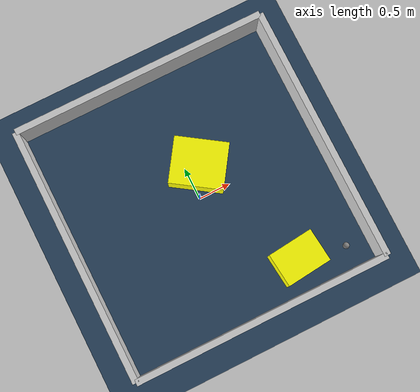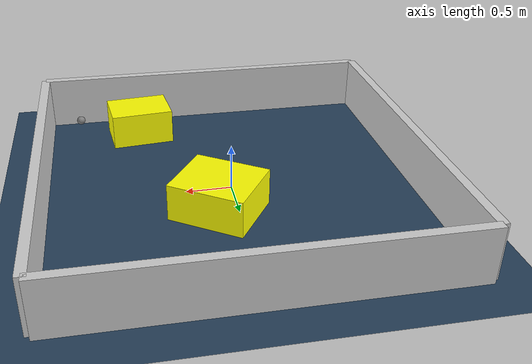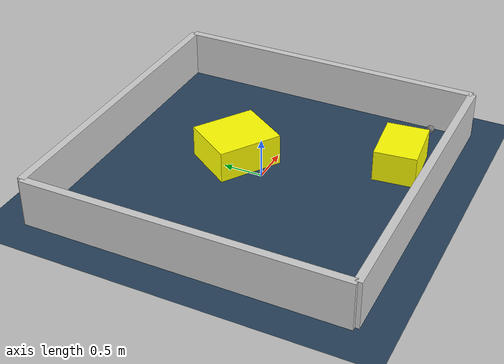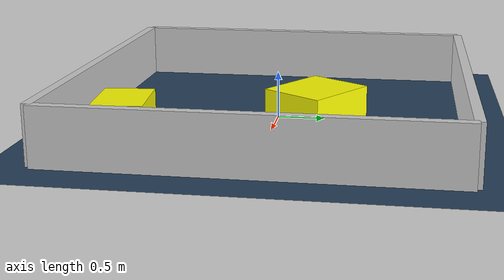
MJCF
<?xml version="1.0" ?>
<mujoco model="generated_environment">
  <option timestep="0.01" integrator="RK4" cone="elliptic"/>
  <default>
    <geom density="1"/>
  </default>
  <asset>
    <texture builtin="gradient" height="3072" rgb1="0.3 0.5 0.7" rgb2="0 0 0" type="skybox" width="512"/>
    <texture builtin="checker" height="300" mark="edge" markrgb="0.8 0.8 0.8" name="groundplane" rgb1="0.2 0.3 0.4" rgb2="0.1 0.2 0.3" type="2d" width="300"/>
    <material name="groundplane" reflectance="0.2" texrepeat="5 5" texture="groundplane" texuniform="true"/>
    <material name="robot" rgba="0.0 1.0 0.0 1"/>
  </asset>
  <worldbody>
    <light dir="0 0 -1" directional="true" pos="0 0 1.5"/>
    <geom condim="4" friction="1.0 0.005 0.001" material="groundplane" name="floor" size="0 0 0.05" type="plane"/>
    <body name="walls">
      <geom name="wall_1" condim="4" pos="-2.0 0.0 0.3" rgba="0.800000011920929 0.800000011920929 0.800000011920929 1.0" size="0.05 2.0 0.3" type="box"/>
      <geom name="wall_2" condim="4" pos="2.0 0.0 0.3" rgba="0.800000011920929 0.800000011920929 0.800000011920929 1.0" size="0.05 2.0 0.3" type="box"/>
      <geom name="wall_3" condim="4" pos="0.0 -2.0 0.3" rgba="0.800000011920929 0.800000011920929 0.800000011920929 1.0" size="2.0 0.05 0.3" type="box"/>
      <geom name="wall_4" condim="4" pos="0.0 2.0 0.3" rgba="0.800000011920929 0.800000011920929 0.800000011920929 1.0" size="2.0 0.05 0.3" type="box"/>
    </body>
    <body name="robot">
      <joint name="joint_x" type="slide" pos="0 0 0" axis="1 0 0"/>
      <joint name="joint_y" type="slide" pos="0 0 0" axis="0 1 0"/>
      <geom name="robot" type="sphere" pos="1.6035157582758743 -1.609462919110573 0.2" size="0.05" mass="5." friction="1.0 0.005 0.0001" condim="4"/>
      <site name="sensor_ball"/>
    </body>
    <body name="obstacle_1_movable">
      <geom name="obstacle_1_movable" condim="4" pos="0.8883463016166626 -1.4651571914464052 0.2" euler="0 0 5.9368131903712795" friction="1.0 0.005 0.001" rgba="1 1 0 1" size="0.35725731896946955 0.2658220403080972 0.2" type="box" mass="0.1"/>
      <joint type="free"/>
    </body>
    <body name="obstacle_2_movable">
      <geom name="obstacle_2_movable" condim="4" pos="0.2049508541596583 0.43811612954173906 0.2" euler="0 0 326.1329515509248" friction="1.0 0.005 0.001" rgba="1 1 0 1" size="0.41279301095926857 0.3580306304663697 0.2" type="box" mass="0.1"/>
      <joint type="free"/>
    </body>
  </worldbody>
  <actuator>
    <motor name="actuator_x" joint="joint_x" gear="1" ctrlrange="-1 1"/>
    <motor name="actuator_y" joint="joint_y" gear="1" ctrlrange="-1 1"/>
  </actuator>
</mujoco>
